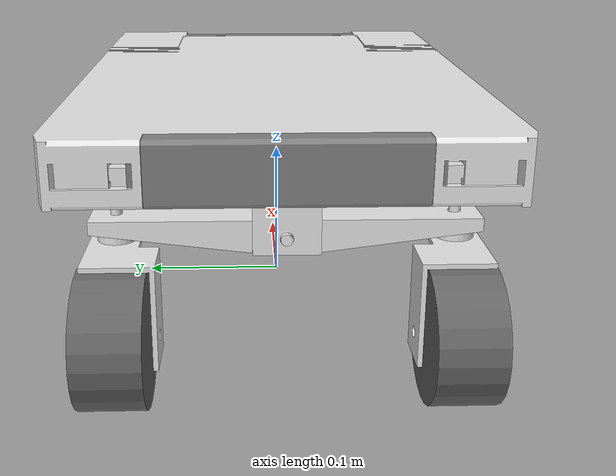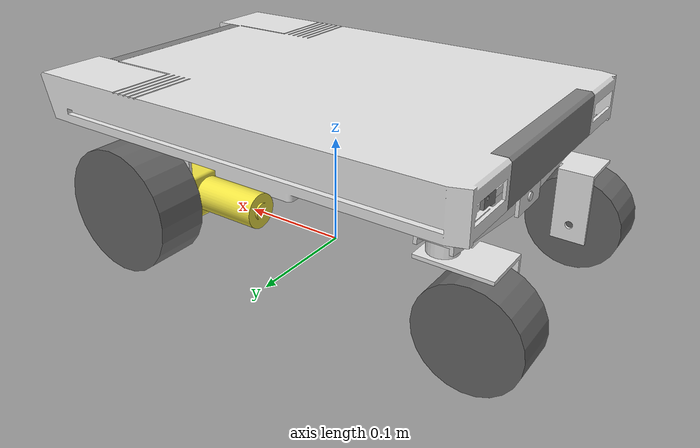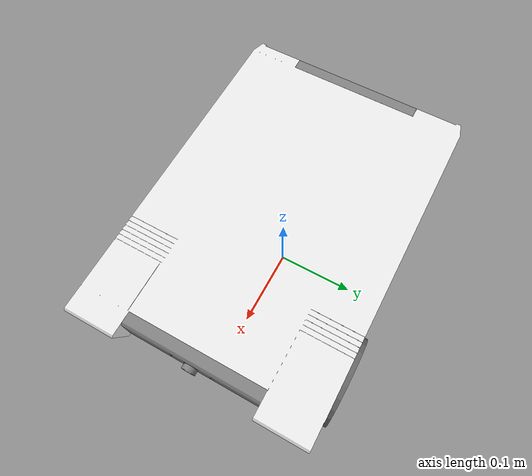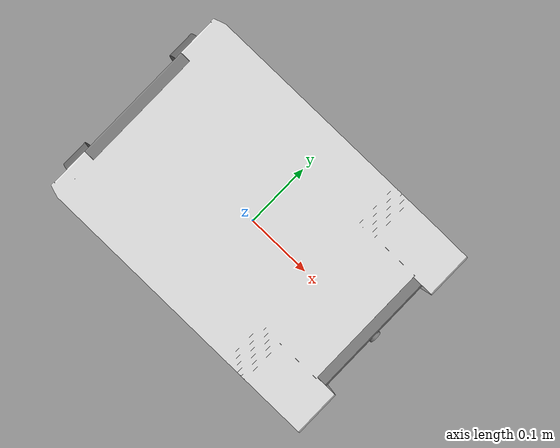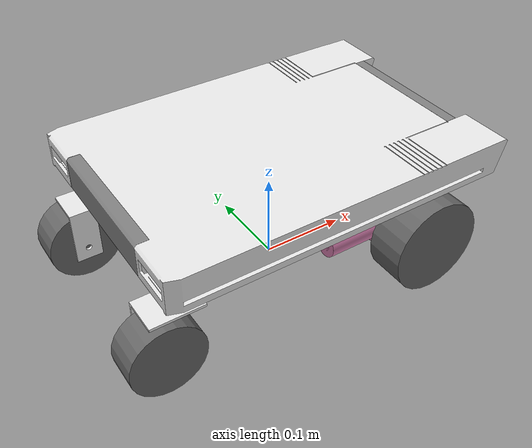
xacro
<?xml version="1.0"?>
<robot name="tortuga" xmlns:xacro="http://www.ros.org/wiki/xacro">

  <xacro:include filename="$(find tortuga)/xacro/inertia.xacro"/>
  <xacro:include filename="$(find tortuga)/xacro/materials.xacro"/>
  <xacro:include filename="$(find tortuga)/xacro/properties.xacro"/>
  <xacro:include filename="$(find tortuga)/xacro/drive_block.xacro"/>
  <xacro:include filename="$(find tortuga)/xacro/caster_block.xacro"/>
  <xacro:include filename="$(find tortuga)/xacro/modules.xacro"/>

  <!-- Select installed modules -->

  <xacro:property name="front_module" value="genius_ks05"/> <!-- dummy, picam_noir, genius_ks05 -->
  <xacro:property name="rear_module"  value="dummy"/> <!-- dummy, antenna, speaker -->

  <!-- Footprint -->

  <link name="base_footprint"/>
  <joint name="base_footprint_joint" type="fixed">
    <origin rpy="0 0 0" xyz="0 0 0.13"/>
    <parent link="base_footprint"/>
    <child link="base_link"/>
  </joint>

  <!-- Alternative parametric base link -->

  <!-- Robot base -->

  <link name="base_link">
    <visual>
      <origin xyz="0.005 0.002 -0.14" rpy="0 0 ${-pi/2}"/>
      <geometry>
        <mesh filename="package://tortuga/meshes/body.stl" scale="0.001 0.001 0.001"/>
      </geometry>
      <material name="aluminium"/>
    </visual>
    <collision>
      <origin xyz="0 0 0.01" rpy="0 0 0"/>
      <geometry>
        <box size="${body_length} ${body_width} ${body_height}"/>
      </geometry>
    </collision>
    <inertial>
      <mass value="${body_mass}"/>
      <xacro:box_inertia m="${body_mass}" x="${body_length}" y="${body_width}" z="${body_height}"/>
    </inertial>
  </link>

  <!-- Front module -->

  <xacro:if value="${front_module=='dummy'}">
    <xacro:dummy name="front_dummy" parent_link="base_link">
      <origin xyz="0.188 0 -0.0105"
              rpy="0 0 0"/>
    </xacro:dummy>
  </xacro:if>

  <xacro:if value="${front_module=='genius_ks05'}">
    <xacro:genius_ks05 name="usb_cam" parent_link="base_link">
      <origin xyz="0.188 0 -0.0105"
              rpy="0 0 0"/>
    </xacro:genius_ks05>
  </xacro:if>

  <xacro:if value="${front_module=='picam_noir'}">
    <xacro:picam_noir name="picam" parent_link="base_link">
      <origin xyz="0.188 0 -0.0105"
              rpy="0 0 0"/>
    </xacro:picam_noir>
  </xacro:if>

  <!-- Rear module -->

  <xacro:if value="${rear_module=='dummy'}">
    <xacro:dummy name="rear_dummy" parent_link="base_link">
      <origin xyz="-0.187 0 -0.0105"
              rpy="0 0 ${pi}"/>
    </xacro:dummy>
  </xacro:if>

  <xacro:if value="${rear_module=='antenna'}">
    <xacro:antenna name="antenna" parent_link="base_link">
      <origin xyz="-0.187 0 -0.0105"
              rpy="0 0 ${pi}"/>
    </xacro:antenna>
  </xacro:if>

  <!-- Drive blocks -->

  <xacro:drive_block name="left" inverted="true">
    <origin xyz="${long_profile_length/2-profile_width-motor_suspension_width/2}
                 ${short_profile_length/2-motor_suspension_depth/2}
                 0"
            rpy="0 0 0"/>
  </xacro:drive_block>

  <xacro:drive_block name="right" inverted="false">
    <origin xyz="${long_profile_length/2-profile_width-motor_suspension_width/2}
                 ${-short_profile_length/2+motor_suspension_depth/2}
                 0"
            rpy="0 0 ${pi}"/>
  </xacro:drive_block>

  <gazebo>
    <plugin name="differential_drive_controller" filename="libgazebo_ros_diff_drive.so">
      <updateRate>100.0</updateRate>
      <leftJoint>left_wheel_joint</leftJoint>
      <rightJoint>right_wheel_joint</rightJoint>
      <wheelSeparation>0.255</wheelSeparation>
      <wheelDiameter>${drive_wheel_radius*2}</wheelDiameter>
      <wheelAcceleration>0.9</wheelAcceleration>
      <wheelTorque>1.0</wheelTorque>
      <commandTopic>cmd_vel</commandTopic>
      <odometryTopic>wheel_odom</odometryTopic>
      <odometryFrame>odom</odometryFrame>
      <robotBaseFrame>base_footprint</robotBaseFrame>
      <publishWheelTF>false</publishWheelTF>
      <publishOdom>true</publishOdom>
      <publishOdomTF>true</publishOdomTF>
      <publishWheelJointState>true</publishWheelJointState>
      <legacyMode>false</legacyMode>
    </plugin>
  </gazebo>

  <!-- Onboard IMU -->

  <link name="imu_link"/>
  <joint name="imu_joint" type="fixed">
    <parent link="base_link"/>
    <child link="imu_link"/>
    <origin xyz="0 0 0" rpy="0 0 0"/>
  </joint>

  <gazebo reference="imu_link">
     <gravity>false</gravity>
     <sensor name="imu_sensor" type="imu">
       <always_on>true</always_on>
       <update_rate>100.0</update_rate>
       <visualize>true</visualize>
       <topic>imu</topic>
       <plugin filename="libgazebo_ros_imu_sensor.so" name="imu_plugin">
          <gravity>false</gravity>
          <topicName>imu</topicName>
          <bodyName>imu_link</bodyName>
          <updateRateHZ>100.0</updateRateHZ>
          <gaussianNoise>0.0</gaussianNoise>
          <xyzOffset>0 0 0</xyzOffset>
          <rpyOffset>0 0 0</rpyOffset>
          <frameName>imu_link</frameName>
          <initialOrientationAsReference>false</initialOrientationAsReference>
       </plugin>
       <pose>0 0 0 0 0 0</pose>
     </sensor>
  </gazebo>

</robot>

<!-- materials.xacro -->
<robot xmlns:xacro="http://www.ros.org/wiki/xacro">

  <material name="rubber">
    <color rgba="0.4 0.4 0.4 1"/>
  </material>

  <material name="aluminium">
    <color rgba="0.9 0.9 0.9 1"/>
  </material>

  <material name="plastic">
    <color rgba="0.5 0.5 0.5 1"/>
  </material>

  <material name="black_plastic">
    <color rgba="0.3 0.3 0.3 1"/>
  </material>

  <material name="plexi">
    <color rgba="0.8 0.9 1.0 0.3"/>
  </material>

</robot>

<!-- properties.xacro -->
<robot xmlns:xacro="http://www.ros.org/wiki/xacro">

  <!-- base drive mode -->
  <xacro:property name="front_drive" value="true"/>

  <!-- simplified body -->
  <xacro:property name="body_width"              value="0.2800"/>
  <xacro:property name="body_height"             value="0.0400"/>
  <xacro:property name="body_length"             value="0.4200"/>
  <xacro:property name="body_mass"               value="1.0000"/> <!-- khm... -->

  <!-- battery -->
  <xacro:property name="battery_width"           value="0.0800"/>
  <xacro:property name="battery_height"          value="0.0620"/>
  <xacro:property name="battery_length"          value="0.1200"/>
  <xacro:property name="battery_mass"            value="0.7630"/>
  <xacro:property name="battery_holder_width"    value="0.0800"/>
  <xacro:property name="battery_holder_height"   value="0.0220"/>
  <xacro:property name="battery_holder_length"   value="0.1600"/>
  <xacro:property name="battery_holder_mass"     value="0.2330"/>

  <!-- caster suspension system -->
  <xacro:property name="axle_bridge_height"      value="0.0340"/>
  <xacro:property name="axle_bridge_width"       value="0.0400"/>
  <xacro:property name="axle_bridge_depth"       value="0.0400"/>
  <xacro:property name="axle_bridge_mass"        value="0.0450"/>
  <xacro:property name="caster_track_width"      value="0.2000"/>
  <xacro:property name="caster_height_trimmer"   value="0.0050"/>
  <xacro:property name="pivoting_axle_length"    value="0.2300"/>
  <xacro:property name="pivoting_axle_depth"     value="0.0300"/>
  <xacro:property name="pivoting_axle_height"    value="0.0200"/>
  <xacro:property name="pivoting_axle_mass"      value="0.1270"/>

  <!-- drive block suspension panel -->
  <xacro:property name="motor_suspension_width"  value="0.0600"/>
  <xacro:property name="motor_suspension_height" value="0.1050"/>
  <xacro:property name="motor_suspension_depth"  value="0.0030"/>
  <xacro:property name="motor_suspension_mass"   value="0.0400"/>

  <!-- drive block definitions -->
  <xacro:property name="motor_gearbox_depth"     value="0.0288"/>
  <xacro:property name="motor_gearbox_length"    value="0.1150"/>
  <xacro:property name="motor_gearbox_height"    value="0.0400"/>
  <xacro:property name="motor_gearbox_mass"      value="0.3640"/>

  <!-- tire definitions -->
  <xacro:property name="drive_wheel_radius"  value="0.0550"/>
  <xacro:property name="drive_wheel_width"   value="0.0450"/>
  <xacro:property name="drive_wheel_mass"    value="0.1420"/>

  <xacro:property name="caster_wheel_radius" value="0.0420"/>
  <xacro:property name="caster_wheel_width"  value="0.0400"/>
  <xacro:property name="caster_wheel_mass"   value="0.0620"/>
  <xacro:property name="caster_axle_mass"    value="0.0610"/>

  <xacro:property name="axle_friction"       value="0.00"/>
  <xacro:property name="axle_damping"        value="0.00"/>

  <xacro:macro name="drive_wheel_geometry">
    <origin xyz="0 0 0" rpy="0 0 0"/>
    <geometry>
      <cylinder radius="${drive_wheel_radius}" length="${drive_wheel_width}"/>
    </geometry>
  </xacro:macro>

  <xacro:macro name="caster_wheel_geometry">
    <origin xyz="0 0 0" rpy="${pi/2} 0 0"/>
    <geometry>
      <cylinder radius="${caster_wheel_radius}" length="${caster_wheel_width}"/>
    </geometry>
  </xacro:macro>

  <!-- base profile definitions -->
  <xacro:property name="long_profile_length"  value="0.3600"/>
  <xacro:property name="short_profile_length" value="0.2000"/>
  <xacro:property name="profile_width"        value="0.0400"/>
  <xacro:property name="profile_height"       value="0.0200"/>
  <xacro:property name="profile_spec_mass"    value="0.8900"/> <!-- kg / m -->
  <xacro:property name="short_profile_mass"   value="${short_profile_length*profile_spec_mass}"/>
  <xacro:property name="long_profile_mass"    value="${long_profile_length*profile_spec_mass}"/>

  <xacro:macro name="short_profile_geometry">
    <origin xyz="0 0 0" rpy="0 0 0"/>
    <geometry>
      <box size="${profile_width} ${short_profile_length} ${profile_height}"/>
    </geometry>
  </xacro:macro>

  <xacro:macro name="long_profile_geometry">
    <origin xyz="0 0 0" rpy="0 0 0"/>
    <geometry>
      <box size="${profile_width} ${long_profile_length} ${profile_height}"/>
    </geometry>
  </xacro:macro>

</robot>

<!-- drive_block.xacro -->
<robot xmlns:xacro="http://www.ros.org/wiki/xacro">

<xacro:macro name="drive_block" params="name *origin inverted">

  <joint name="${name}_drive_block_joint" type="fixed">
    <parent link="base_link"/>
    <child  link="${name}_block_suspension"/>
    <xacro:insert_block name="origin"/>
  </joint>

  <link name="${name}_block_suspension">
    <visual>
      <origin xyz="0 0 ${-motor_suspension_height/2+profile_height/2}" rpy="0 0 0"/>
      <geometry>
        <box size="${motor_suspension_width} ${motor_suspension_depth} ${motor_suspension_height}"/>
      </geometry>
      <material name="aluminium"/>
    </visual>
    <collision>
      <origin xyz="0 0 ${-motor_suspension_height/2+profile_height/2}" rpy="0 0 0"/>
      <geometry>
        <box size="${motor_suspension_width} ${motor_suspension_depth} ${motor_suspension_height}"/>
      </geometry>
    </collision>
    <inertial>
      <mass value="${motor_suspension_mass}"/>
      <xacro:box_inertia m="${motor_suspension_mass}" x="${motor_suspension_width}" y="${motor_suspension_depth}" z="${motor_suspension_height}"/>
    </inertial>
  </link>

  <xacro:if value="${inverted}">
    <xacro:property name="gear_dislocation" value="0.01"/>
    <xacro:if value="${front_drive}">
      <xacro:property name="wheel_orientation" value="0"/>
    </xacro:if>
    <xacro:unless value="${front_drive}">
      <xacro:property name="wheel_orientation" value="${pi}"/>
    </xacro:unless>
  </xacro:if>
  <xacro:unless value="${inverted}">
    <xacro:property name="gear_dislocation" value="-0.01"/>
    <xacro:if value="${front_drive}">
      <xacro:property name="wheel_orientation" value="${pi}"/>
    </xacro:if>
    <xacro:unless value="${front_drive}">
      <xacro:property name="wheel_orientation" value="0"/>
    </xacro:unless>
  </xacro:unless>

  <joint name="${name}_motor_joint" type="fixed">
    <parent link="${name}_block_suspension"/>
    <child  link="${name}_motor"/>
    <origin xyz="${gear_dislocation} ${-motor_suspension_depth/2-motor_gearbox_depth} -0.075" rpy="0 ${-pi*inverted} 0"/>
  </joint>

  <link name="${name}_motor">
    <visual>
      <origin xyz="0.009 0 0" rpy="0 0 0"/>
      <geometry>
        <mesh filename="package://tortuga/meshes/gear_motor.stl" scale="0.001 0.001 0.001"/>
      </geometry>
    </visual>
    <collision>
      <origin xyz="0.04 0.01 0" rpy="0 0 0"/>
      <geometry>
        <box size="${motor_gearbox_length} ${motor_gearbox_depth} ${motor_gearbox_height}"/>
      </geometry>
    </collision>
    <inertial>
      <origin xyz="0.04 0.01 0" rpy="0 0 0"/>
      <geometry>
        <box size="${motor_gearbox_length} ${motor_gearbox_depth} ${motor_gearbox_height}"/>
      </geometry>
      <mass value="${motor_gearbox_mass}"/>
      <xacro:box_inertia m="${motor_gearbox_mass}" x="${motor_gearbox_length}" y="${motor_gearbox_depth}" z="${motor_gearbox_height}"/>
    </inertial>
  </link>

  <joint name="${name}_wheel_joint" type="continuous">
    <parent link="${name}_motor"/>
    <child  link="${name}_drive_wheel"/>
    <origin xyz="0 ${motor_gearbox_depth+drive_wheel_width/2+motor_suspension_depth*2} 0" rpy="${-pi/2} 0 ${wheel_orientation}"/>
    <axis xyz="0 0 1"/>
  </joint>

  <link name="${name}_drive_wheel">
    <visual>
      <xacro:drive_wheel_geometry/>
      <material name="rubber"/>
    </visual>
    <collision>
      <xacro:drive_wheel_geometry/>
    </collision>
    <inertial>
      <xacro:drive_wheel_geometry/>
      <mass value="${drive_wheel_mass}"/>
      <xacro:cylinder_inertia m="${drive_wheel_mass}" r="${drive_wheel_radius}" h="${drive_wheel_width}"/>
    </inertial>
  </link>
  <gazebo reference="${name}_drive_wheel">
    <material>Gazebo/DarkGrey</material>
    <mu1>2.0</mu1>
    <mu2>2.0</mu2>
    <kp>10000000.0</kp>
    <kd>100.0</kd>
    <minDepth>0.001</minDepth>
    <maxVel>1.0</maxVel>
  </gazebo>

</xacro:macro>

</robot>

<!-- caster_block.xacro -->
<robot xmlns:xacro="http://www.ros.org/wiki/xacro">

  <!-- fixed bridge holding the pivoting axle -->
  <joint name="caster_bridge_joint" type="fixed">
    <parent link="base_link"/>
    <child  link="bridge_suspension"/>
    <origin xyz="${-long_profile_length/2+profile_width/2}
                 0
                 ${-axle_bridge_height/2-profile_height/2}"
            rpy="0 0 0"/>
  </joint>
  <link name="bridge_suspension">
    <visual>
      <origin xyz="0 0 0" rpy="0 0 ${pi/2}"/>
      <geometry>
        <mesh filename="package://tortuga/meshes/axle_bridge.stl" scale="0.001 0.001 0.001"/>
      </geometry>
      <material name="aluminium"/>
    </visual>
    <collision>
      <origin xyz="0 0 0" rpy="0 0 ${pi/2}"/>
      <geometry>
        <mesh filename="package://tortuga/meshes/axle_bridge.stl" scale="0.001 0.001 0.001"/>
      </geometry>
    </collision>
    <inertial>
      <origin xyz="0 0 0" rpy="0 0 0"/>
      <geometry>
        <box size="${axle_bridge_depth} ${axle_bridge_width} ${axle_bridge_height}"/>
      </geometry>
      <mass value="${axle_bridge_mass}"/>
      <xacro:box_inertia m="${axle_bridge_mass}" x="${axle_bridge_depth}" y="${axle_bridge_width}" z="${axle_bridge_height}"/>
    </inertial>
  </link>

  <!-- pivoting axle holding the two caster axles -->
  <joint name="pivoting_axle_joint" type="fixed">
    <parent link="bridge_suspension"/>
    <child  link="pivoting_axle"/>
    <origin xyz="0 0 -0.0075"
            rpy="0 0 0"/>
    <limit effort="1" velocity="1" lower="-0.1" upper="0.1"/>
    <dynamics damping="${axle_damping}" friction="${axle_friction}"/>
    <axis xyz="1 0 0"/>
  </joint>
  <link name="pivoting_axle">
    <visual>
      <origin xyz="0 0 0" rpy="0 0 ${pi/2}"/>
      <geometry>
        <mesh filename="package://tortuga/meshes/pivoting_axle.stl" scale="0.001 0.001 0.001"/>
      </geometry>
      <material name="aluminium"/>
    </visual>
    <collision>
      <origin xyz="0 0 0" rpy="0 0 ${pi/2}"/>
      <geometry>
        <mesh filename="package://tortuga/meshes/pivoting_axle.stl" scale="0.001 0.001 0.001"/>
      </geometry>
    </collision>
    <inertial>
      <origin xyz="0 0 0" rpy="0 0 0"/>
      <geometry>
        <box size="${pivoting_axle_depth} ${pivoting_axle_length} ${pivoting_axle_height}"/>
      </geometry>
      <mass value="${pivoting_axle_mass}"/>
      <xacro:box_inertia m="${pivoting_axle_mass}" x="${pivoting_axle_depth}" y="${pivoting_axle_length}" z="${pivoting_axle_height}"/>
    </inertial>
  </link>

  <!-- SIDE-A caster assembly -->
  <joint name="A_side_caster_axle_joint" type="continuous">
    <parent link="pivoting_axle"/>
    <child  link="A_side_caster_axle"/>
    <origin xyz="0 ${caster_track_width/2} ${caster_height_trimmer}" rpy="0 0 0"/>
    <axis xyz="0 0 1"/>
  </joint>
  <link name="A_side_caster_axle">
    <visual>
      <origin xyz="-0.015 -0.005 -0.03" rpy="0 0 ${-pi/2}"/>
      <geometry>
        <mesh filename="package://tortuga/meshes/caster_axle_side_a.stl" scale="0.001 0.001 0.001"/>
      </geometry>
      <material name="aluminium"/>
    </visual>
    <collision>
      <origin xyz="-0.03 -0.025 -0.045" rpy="0 0 0"/>
      <geometry>
        <box size="0.03 0.003 0.06"/>
      </geometry>
    </collision>
    <inertial>
      <origin xyz="-0.03 -0.025 -0.045" rpy="0 0 0"/>
      <geometry>
        <box size="0.03 0.003 0.06"/>
      </geometry>
      <mass value="0.01"/>
      <xacro:box_inertia m="0.01" x="0.03" y="0.003" z="0.06"/>
    </inertial>
  </link>
  <gazebo reference="A_side_caster_axle">
    <mu1>0.0</mu1>
    <mu2>0.0</mu2>
    <kp>1000000.0</kp>
    <kd>100.0</kd>
    <minDepth>0.001</minDepth>
    <maxVel>1.0</maxVel>
  </gazebo>

  <!-- wheel -->
  <joint name="A_side_caster_wheel_joint" type="continuous">
    <parent link="A_side_caster_axle"/>
    <child  link="A_side_caster_wheel"/>
    <origin xyz="-0.03 0 -0.06" rpy="0 0 0"/>
    <axis xyz="0 1 0"/>
  </joint>
  <link name="A_side_caster_wheel">
    <visual>
      <xacro:caster_wheel_geometry/>
      <material name="rubber"/>
    </visual>
    <collision>
      <xacro:caster_wheel_geometry/>
    </collision>
    <inertial>
      <xacro:caster_wheel_geometry/>
      <mass value="${caster_wheel_mass}"/>
      <xacro:cylinder_inertia m="${caster_wheel_mass}" r="${caster_wheel_radius}" h="${caster_wheel_width}"/>
    </inertial>
  </link>
  <gazebo reference="A_side_caster_wheel">
    <material>Gazebo/DarkGrey</material>
    <mu1>1.0</mu1>
    <mu2>1.0</mu2>
    <kp>1000000.0</kp>
    <kd>100.0</kd>
    <minDepth>0.001</minDepth>
    <maxVel>1.0</maxVel>
  </gazebo>

  <!-- SIDE-B caster assembly -->
  <joint name="B_side_caster_axle_joint" type="continuous">
    <parent link="pivoting_axle"/>
    <child  link="B_side_caster_axle"/>
    <origin xyz="0 ${-caster_track_width/2} ${caster_height_trimmer}" rpy="0 0 0"/>
    <axis xyz="0 0 1"/>
  </joint>
  <link name="B_side_caster_axle">
    <visual>
      <origin xyz="-0.015 0.005 -0.03" rpy="0 0 ${-pi/2}"/>
      <geometry>
        <mesh filename="package://tortuga/meshes/caster_axle_side_b.stl" scale="0.001 0.001 0.001"/>
      </geometry>
      <material name="aluminium"/>
    </visual>
    <collision>
      <origin xyz="-0.03 0.025 -0.045" rpy="0 0 0"/>
      <geometry>
        <box size="0.03 0.003 0.06"/>
      </geometry>
    </collision>
    <inertial>
      <origin xyz="-0.03 0.025 -0.045" rpy="0 0 0"/>
      <geometry>
        <box size="0.03 0.003 0.06"/>
      </geometry>
      <mass value="${caster_axle_mass}"/>
      <xacro:box_inertia m="${caster_axle_mass}" x="0.03" y="0.003" z="0.06"/>
    </inertial>
  </link>
  <gazebo reference="B_side_caster_axle">
    <mu1>0.0</mu1>
    <mu2>0.0</mu2>
    <kp>1000000.0</kp>
    <kd>100.0</kd>
    <minDepth>0.001</minDepth>
    <maxVel>1.0</maxVel>
  </gazebo>

  <!-- wheel -->
  <joint name="B_side_caster_wheel_joint" type="continuous">
    <parent link="B_side_caster_axle"/>
    <child  link="B_side_caster_wheel"/>
    <origin xyz="-0.03 0 -0.06" rpy="0 0 0"/>
    <axis xyz="0 1 0"/>
  </joint>
  <link name="B_side_caster_wheel">
    <visual>
      <xacro:caster_wheel_geometry/>
      <material name="rubber"/>
    </visual>
    <collision>
      <xacro:caster_wheel_geometry/>
    </collision>
    <inertial>
      <xacro:caster_wheel_geometry/>
      <mass value="${caster_wheel_mass}"/>
      <xacro:cylinder_inertia m="${caster_wheel_mass}" r="${caster_wheel_radius}" h="${caster_wheel_width}"/>
    </inertial>
  </link>
  <gazebo reference="B_side_caster_wheel">
    <material>Gazebo/DarkGrey</material>
    <mu1>1.0</mu1>
    <mu2>1.0</mu2>
    <kp>1000000.0</kp>
    <kd>100.0</kd>
    <minDepth>0.001</minDepth>
    <maxVel>1.0</maxVel>
  </gazebo>

</robot>

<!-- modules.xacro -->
<robot xmlns:xacro="http://www.ros.org/wiki/xacro">

  <!-- Empty sensor module -->

  <xacro:macro name="dummy" params="name parent_link *origin">

    <joint name="${name}_joint" type="fixed">
      <parent link="${parent_link}"/>
      <child link="${name}"/>
      <xacro:insert_block name="origin"/>
    </joint>

    <link name="${name}">
      <visual>
        <origin xyz="0 0 0" rpy="0 0 ${-pi/2}"/>
        <geometry>
          <mesh filename="package://tortuga/meshes/dummy_module.stl" scale="0.001 0.001 0.001"/>
        </geometry>
        <material name="plastic"/>
      </visual>
    </link>
  </xacro:macro>

  <!-- Empty antenna module -->

  <xacro:macro name="antenna" params="name parent_link *origin">

    <joint name="${name}_joint" type="fixed">
      <parent link="${parent_link}"/>
      <child link="${name}"/>
      <xacro:insert_block name="origin"/>
    </joint>

    <link name="${name}">
      <visual>
        <origin xyz="0.006 0 0" rpy="0 0 ${-pi/2}"/>
        <geometry>
          <mesh filename="package://tortuga/meshes/antenna_module.stl" scale="0.001 0.001 0.001"/>
        </geometry>
        <material name="plastic"/>
      </visual>
    </link>
  </xacro:macro>

  <!-- Raspicam with infrared emitters -->

  <xacro:macro name="picam_noir" params="name parent_link *origin">

    <joint name="${name}_joint" type="fixed">
      <parent link="${parent_link}"/>
      <child link="${name}"/>
      <xacro:insert_block name="origin"/>
    </joint>

    <link name="${name}">
      <visual>
        <origin xyz="0.0085 0 0" rpy="0 0 ${-pi/2}"/>
        <geometry>
          <mesh filename="package://tortuga/meshes/picam_noir_module.stl" scale="0.001 0.001 0.001"/>
        </geometry>
        <material name="plastic"/>
      </visual>
    </link>
  </xacro:macro>

  <!-- Genius KS05 wide angle camera with microphones -->

  <xacro:macro name="genius_ks05" params="name parent_link *origin">

    <joint name="${name}_joint" type="fixed">
      <parent link="${parent_link}"/>
      <child link="${name}"/>
      <xacro:insert_block name="origin"/>
    </joint>

    <link name="${name}">
      <visual>
        <origin xyz="0.0025 0 0" rpy="0 0 ${-pi/2}"/>
        <geometry>
          <mesh filename="package://tortuga/meshes/genius_module.stl" scale="0.001 0.001 0.001"/>
        </geometry>
        <material name="plastic"/>
      </visual>
    </link>
  </xacro:macro>

</robot>
